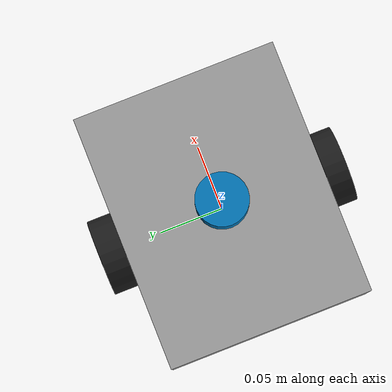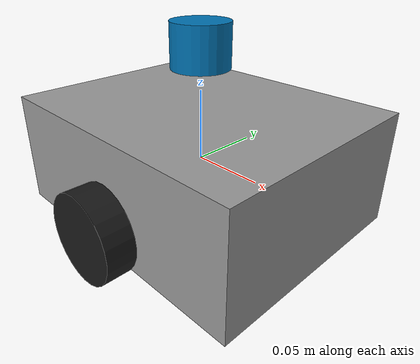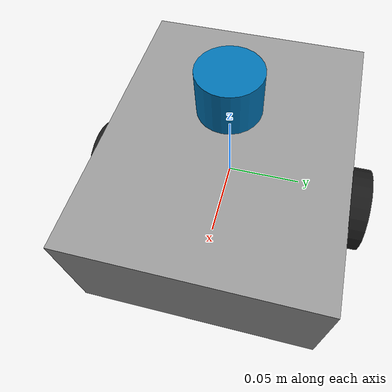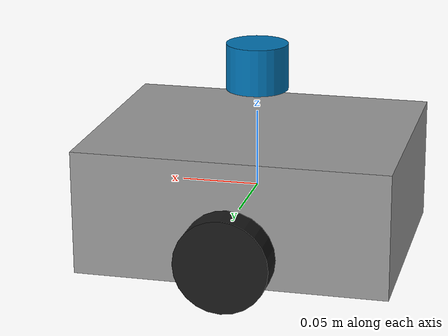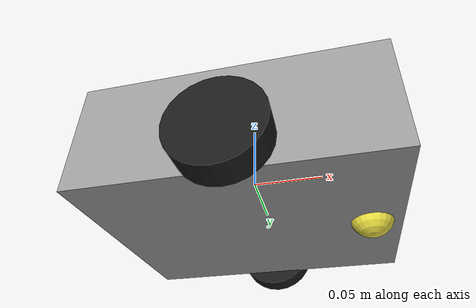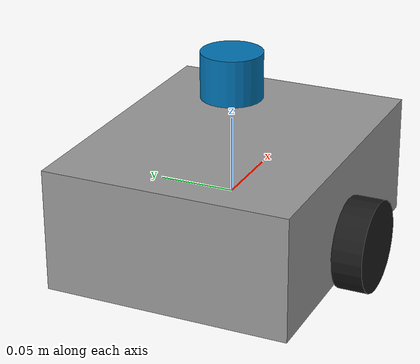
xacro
<?xml version="1.0"?>
<robot name="sim_robot" xmlns:xacro="http://www.ros.org/wiki/xacro">

  <xacro:arg name="robot_name" default="robot1"/>
  <xacro:property name="robot_name" value="$(arg robot_name)"/>

  <!-- ============ BASE ============ -->
  <link name="${robot_name}/base_link">
    <visual>
      <geometry><box size="0.20 0.16 0.08"/></geometry>
      <material name="grey"><color rgba="0.6 0.6 0.6 1"/></material>
    </visual>
    <collision>
      <geometry><box size="0.20 0.16 0.08"/></geometry>
    </collision>
    <inertial>
      <mass value="1.0"/>
      <inertia ixx="0.01" ixy="0" ixz="0" iyy="0.01" iyz="0" izz="0.01"/>
    </inertial>
  </link>

  <!-- ============ WHEELS ============ -->
  <xacro:macro name="wheel" params="side y">
    <link name="${robot_name}/${side}_wheel">
      <visual>
        <origin rpy="1.5708 0 0"/>
        <geometry><cylinder radius="0.03" length="0.02"/></geometry>
        <material name="black"><color rgba="0.1 0.1 0.1 1"/></material>
      </visual>
      <collision>
        <origin rpy="1.5708 0 0"/>
        <geometry><cylinder radius="0.03" length="0.02"/></geometry>
      </collision>
      <inertial>
        <mass value="0.05"/>
        <inertia ixx="0.0001" ixy="0" ixz="0" iyy="0.0001" iyz="0" izz="0.0001"/>
      </inertial>
    </link>
    <joint name="${robot_name}/${side}_wheel_joint" type="continuous">
      <parent link="${robot_name}/base_link"/>
      <child link="${robot_name}/${side}_wheel"/>
      <origin xyz="0 ${y} -0.02" rpy="0 0 0"/>
      <axis xyz="0 1 0"/>
    </joint>
  </xacro:macro>

  <xacro:wheel side="left" y="0.09"/>
  <xacro:wheel side="right" y="-0.09"/>

  <!-- Caster (fixed, purely for stability in sim) -->
  <link name="${robot_name}/caster">
    <visual><geometry><sphere radius="0.015"/></geometry></visual>
    <collision><geometry><sphere radius="0.015"/></geometry></collision>
    <inertial>
      <mass value="0.01"/>
      <inertia ixx="0.00001" ixy="0" ixz="0" iyy="0.00001" iyz="0" izz="0.00001"/>
    </inertial>
  </link>
  <joint name="${robot_name}/caster_joint" type="fixed">
    <parent link="${robot_name}/base_link"/>
    <child link="${robot_name}/caster"/>
    <origin xyz="0.08 0 -0.035" rpy="0 0 0"/>
  </joint>

  <!-- ============ LIDAR ============ -->
  <link name="${robot_name}/lidar_link">
    <visual><geometry><cylinder radius="0.02" length="0.03"/></geometry></visual>
    <inertial>
      <mass value="0.05"/>
      <inertia ixx="0.00001" ixy="0" ixz="0" iyy="0.00001" iyz="0" izz="0.00001"/>
    </inertial>
  </link>
  <joint name="${robot_name}/lidar_joint" type="fixed">
    <parent link="${robot_name}/base_link"/>
    <child link="${robot_name}/lidar_link"/>
    <origin xyz="0 0 0.08" rpy="0 0 0"/>
  </joint>

  <!-- ============ IMU ============ -->
  <link name="${robot_name}/imu_link"/>
  <joint name="${robot_name}/imu_joint" type="fixed">
    <parent link="${robot_name}/base_link"/>
    <child link="${robot_name}/imu_link"/>
    <origin xyz="0 0 0.05" rpy="0 0 0"/>
  </joint>

  <!-- ============ GAZEBO PLUGINS ============ -->
  <gazebo>
    <plugin filename="gz-sim-diff-drive-system" name="gz::sim::systems::DiffDrive">
      <left_joint>${robot_name}/left_wheel_joint</left_joint>
      <right_joint>${robot_name}/right_wheel_joint</right_joint>
      <wheel_separation>0.18</wheel_separation>
      <wheel_radius>0.03</wheel_radius>
      <topic>/${robot_name}/cmd_vel</topic>
      <odom_topic>/${robot_name}/odom_sim</odom_topic>
      <tf_topic>/${robot_name}/tf_sim</tf_topic>
      <frame_id>${robot_name}/odom</frame_id>
      <child_frame_id>${robot_name}/base_link</child_frame_id>
      <odom_publish_frequency>20</odom_publish_frequency>
    </plugin>

    <plugin filename="gz-sim-joint-state-publisher-system"
            name="gz::sim::systems::JointStatePublisher">
      <topic>/${robot_name}/joint_states</topic>
    </plugin>
  </gazebo>

  <gazebo reference="${robot_name}/lidar_link">
    <sensor name="${robot_name}_lidar" type="gpu_lidar">
      <topic>/${robot_name}/scan_sim</topic>
      <update_rate>10</update_rate>
      <lidar>
        <scan>
          <horizontal>
            <samples>360</samples>
            <min_angle>0</min_angle>
            <max_angle>6.28318530718</max_angle>
          </horizontal>
        </scan>
        <range>
          <min>0.05</min>
          <max>12.0</max>
        </range>
      </lidar>
      <always_on>true</always_on>
      <visualize>false</visualize>
    </sensor>
  </gazebo>

  <gazebo reference="${robot_name}/imu_link">
    <sensor name="${robot_name}_imu" type="imu">
      <topic>/${robot_name}/imu_sim</topic>
      <update_rate>50</update_rate>
      <always_on>true</always_on>
    </sensor>
  </gazebo>

</robot>
